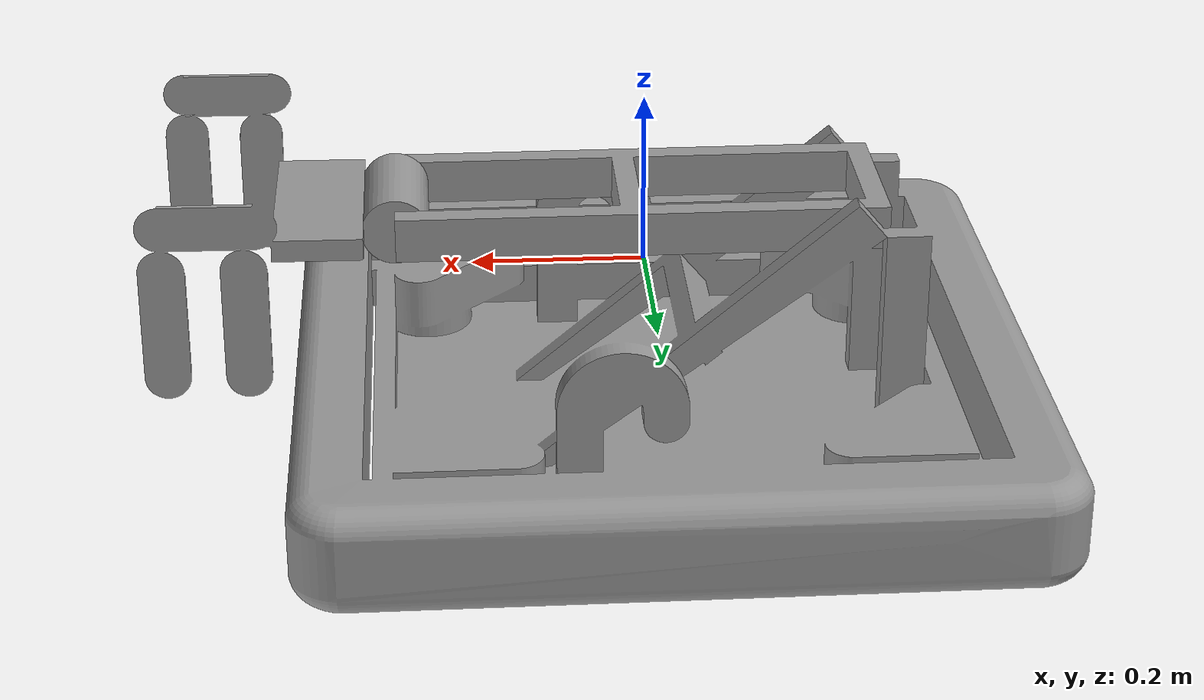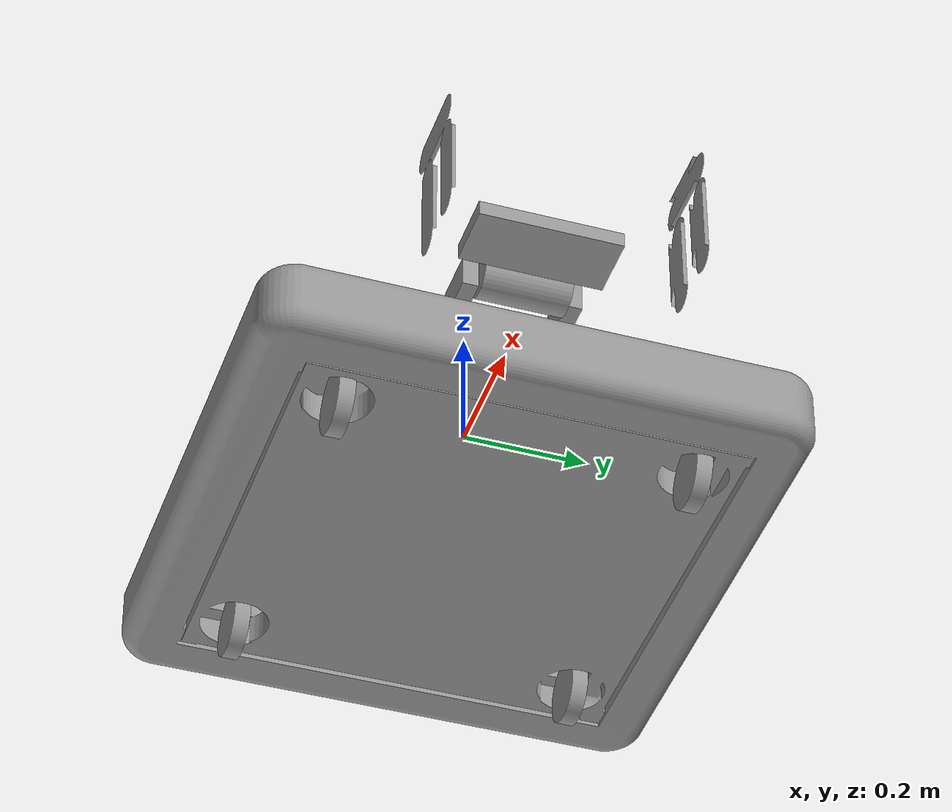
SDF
<?xml version='1.0'?>
<sdf version='1.7'>
  <model name='GLIP'>
    <link name='chassis'>
      <inertial>
        <mass>18.5</mass>
        <inertia>
          <ixx>1.40426</ixx>
          <ixy>0</ixy>
          <ixz>0</ixz>
          <iyy>1.38645</iyy>
          <iyz>0</iyz>
          <izz>2.62443</izz>
        </inertia>
        <pose>0 0 0 0 -0 0</pose>
      </inertial>
      <pose>-0.027031 0 -0.146051 0 -0 0</pose>
      <gravity>1</gravity>
      <self_collide>0</self_collide>
      <kinematic>0</kinematic>
      <enable_wind>0</enable_wind>
      <sensor name='imu_sensor' type='imu'>
        <always_on>1</always_on>
        <update_rate>100</update_rate>
        <visualize>1</visualize>
        <topic>imu_sensor</topic>
        <pose>0 0 0 0 -0 0</pose>
        <plugin name='nt_imu_plugin' filename='libnt_imu_plugin.so'>
          <robot_name>GLIP</robot_name>
        </plugin>
        <imu/>
      </sensor>
      <visual name='visual'>
        <pose>0 0 0 0 -0 0</pose>
        <geometry>
          <mesh>
            <uri>/home/ajahueym/Documents/Gits/Overture-ROS/src/robot_simulation/models/GLIP/Chassis.dae</uri>
            <scale>1 1 1</scale>
          </mesh>
        </geometry>
        <material>
          <lighting>1</lighting>
          <script>
            <uri>file://media/materials/scripts/gazebo.material</uri>
            <name>Gazebo/Grey</name>
          </script>
          <shader type='pixel'>
            <normal_map>__default__</normal_map>
          </shader>
          <ambient>0.3 0.3 0.3 1</ambient>
          <diffuse>0.7 0.7 0.7 1</diffuse>
          <specular>0.01 0.01 0.01 1</specular>
          <emissive>0 0 0 1</emissive>
        </material>
        <transparency>0</transparency>
        <cast_shadows>1</cast_shadows>
      </visual>
      <collision name='collision'>
        <laser_retro>0</laser_retro>
        <max_contacts>10</max_contacts>
        <pose>0 0 0 0 -0 0</pose>
        <geometry>
          <mesh>
            <uri>/home/ajahueym/Documents/Gits/Overture-ROS/src/robot_simulation/models/GLIP/Chassis.dae</uri>
            <scale>1 1 1</scale>
          </mesh>
        </geometry>
        <surface>
          <friction>
            <ode>
              <mu>1</mu>
              <mu2>1</mu2>
              <fdir1>0 0 0</fdir1>
              <slip1>0</slip1>
              <slip2>0</slip2>
            </ode>
            <torsional>
              <coefficient>1</coefficient>
              <patch_radius>0</patch_radius>
              <surface_radius>0</surface_radius>
              <use_patch_radius>1</use_patch_radius>
              <ode>
                <slip>0</slip>
              </ode>
            </torsional>
          </friction>
          <bounce>
            <restitution_coefficient>0</restitution_coefficient>
            <threshold>1e+06</threshold>
          </bounce>
          <contact>
            <collide_without_contact>0</collide_without_contact>
            <collide_without_contact_bitmask>1</collide_without_contact_bitmask>
            <collide_bitmask>1</collide_bitmask>
            <ode>
              <soft_cfm>0</soft_cfm>
              <soft_erp>0.2</soft_erp>
              <kp>1e+13</kp>
              <kd>1</kd>
              <max_vel>0.01</max_vel>
              <min_depth>0</min_depth>
            </ode>
            <bullet>
              <split_impulse>1</split_impulse>
              <split_impulse_penetration_threshold>-0.01</split_impulse_penetration_threshold>
              <soft_cfm>0</soft_cfm>
              <soft_erp>0.2</soft_erp>
              <kp>1e+13</kp>
              <kd>1</kd>
            </bullet>
          </contact>
        </surface>
      </collision>
    </link>
    <link name='arm'>
      <inertial>
        <mass>3</mass>
        <inertia>
          <ixx>0.0825805</ixx>
          <ixy>0</ixy>
          <ixz>0</ixz>
          <iyy>0.0211734</iyy>
          <iyz>0.015493</iyz>
          <izz>0.0963264</izz>
          <izy>0.01549296</izy>
        </inertia>
        <pose>0 0 0 0 -0 0</pose>
      </inertial>
      <pose>-0.259545 0 0.073061 0 -0 0</pose>
      <gravity>1</gravity>
      <self_collide>0</self_collide>
      <kinematic>0</kinematic>
      <enable_wind>0</enable_wind>
      <visual name='visual'>
        <pose>0 0 0 0 -0 0</pose>
        <geometry>
          <mesh>
            <uri>/home/ajahueym/Documents/Gits/Overture-ROS/src/robot_simulation/models/GLIP/Arm.dae</uri>
            <scale>1 1 1</scale>
          </mesh>
        </geometry>
        <material>
          <lighting>1</lighting>
          <script>
            <uri>file://media/materials/scripts/gazebo.material</uri>
            <name>Gazebo/Grey</name>
          </script>
          <shader type='pixel'>
            <normal_map>__default__</normal_map>
          </shader>
          <ambient>0.3 0.3 0.3 1</ambient>
          <diffuse>0.7 0.7 0.7 1</diffuse>
          <specular>0.01 0.01 0.01 1</specular>
          <emissive>0 0 0 1</emissive>
        </material>
        <transparency>0</transparency>
        <cast_shadows>1</cast_shadows>
      </visual>
      <collision name='collision'>
        <laser_retro>0</laser_retro>
        <max_contacts>10</max_contacts>
        <pose>0 0 0 0 -0 0</pose>
        <geometry>
          <mesh>
            <uri>/home/ajahueym/Documents/Gits/Overture-ROS/src/robot_simulation/models/GLIP/Arm.dae</uri>
            <scale>1 1 1</scale>
          </mesh>
        </geometry>
        <surface>
          <friction>
            <ode>
              <mu>1</mu>
              <mu2>1</mu2>
              <fdir1>0 0 0</fdir1>
              <slip1>0</slip1>
              <slip2>0</slip2>
            </ode>
            <torsional>
              <coefficient>1</coefficient>
              <patch_radius>0</patch_radius>
              <surface_radius>0</surface_radius>
              <use_patch_radius>1</use_patch_radius>
              <ode>
                <slip>0</slip>
              </ode>
            </torsional>
          </friction>
          <bounce>
            <restitution_coefficient>0</restitution_coefficient>
            <threshold>1e+06</threshold>
          </bounce>
          <contact>
            <collide_without_contact>0</collide_without_contact>
            <collide_without_contact_bitmask>1</collide_without_contact_bitmask>
            <collide_bitmask>1</collide_bitmask>
            <ode>
              <soft_cfm>0</soft_cfm>
              <soft_erp>0.2</soft_erp>
              <kp>1e+13</kp>
              <kd>1</kd>
              <max_vel>0.01</max_vel>
              <min_depth>0</min_depth>
            </ode>
            <bullet>
              <split_impulse>1</split_impulse>
              <split_impulse_penetration_threshold>-0.01</split_impulse_penetration_threshold>
              <soft_cfm>0</soft_cfm>
              <soft_erp>0.2</soft_erp>
              <kp>1e+13</kp>
              <kd>1</kd>
            </bullet>
          </contact>
        </surface>
      </collision>
    </link>
    <link name='link_0'>
      <inertial>
        <mass>0.24</mass>
        <inertia>
          <ixx>0.00019778</ixx>
          <ixy>0</ixy>
          <ixz>0</ixz>
          <iyy>0.00019778</iyy>
          <iyz>0</iyz>
          <izz>0.00035039</izz>
        </inertia>
        <pose>0 0 0 0 -0 0</pose>
      </inertial>
      <pose>0.253002 -0.275679 -0.212763 0 -0 0</pose>
      <gravity>1</gravity>
      <self_collide>0</self_collide>
      <kinematic>0</kinematic>
      <enable_wind>0</enable_wind>
      <visual name='visual'>
        <pose>0 0 0 0 -0 0</pose>
        <geometry>
          <mesh>
            <uri>/home/ajahueym/Documents/Gits/Overture-ROS/src/robot_simulation/models/GLIP/Wheel.dae</uri>
            <scale>1 1 1</scale>
          </mesh>
        </geometry>
        <material>
          <lighting>1</lighting>
          <script>
            <uri>file://media/materials/scripts/gazebo.material</uri>
            <name>Gazebo/Grey</name>
          </script>
          <shader type='pixel'>
            <normal_map>__default__</normal_map>
          </shader>
          <ambient>0.3 0.3 0.3 1</ambient>
          <diffuse>0.7 0.7 0.7 1</diffuse>
          <specular>0.01 0.01 0.01 1</specular>
          <emissive>0 0 0 1</emissive>
        </material>
        <transparency>0</transparency>
        <cast_shadows>1</cast_shadows>
      </visual>
      <collision name='collision'>
        <laser_retro>0</laser_retro>
        <max_contacts>10</max_contacts>
        <pose>0 0 0 0 -0 0</pose>
        <geometry>
          <mesh>
            <uri>/home/ajahueym/Documents/Gits/Overture-ROS/src/robot_simulation/models/GLIP/Wheel.dae</uri>
            <scale>1 1 1</scale>
          </mesh>
        </geometry>
        <surface>
          <friction>
            <ode>
              <mu>1</mu>
              <mu2>1</mu2>
              <fdir1>0 0 0</fdir1>
              <slip1>0</slip1>
              <slip2>0</slip2>
            </ode>
            <torsional>
              <coefficient>1</coefficient>
              <patch_radius>0</patch_radius>
              <surface_radius>0</surface_radius>
              <use_patch_radius>1</use_patch_radius>
              <ode>
                <slip>0</slip>
              </ode>
            </torsional>
          </friction>
          <bounce>
            <restitution_coefficient>0</restitution_coefficient>
            <threshold>1e+06</threshold>
          </bounce>
          <contact>
            <collide_without_contact>0</collide_without_contact>
            <collide_without_contact_bitmask>1</collide_without_contact_bitmask>
            <collide_bitmask>1</collide_bitmask>
            <ode>
              <soft_cfm>0</soft_cfm>
              <soft_erp>0.2</soft_erp>
              <kp>1e+13</kp>
              <kd>1</kd>
              <max_vel>0.01</max_vel>
              <min_depth>0</min_depth>
            </ode>
            <bullet>
              <split_impulse>1</split_impulse>
              <split_impulse_penetration_threshold>-0.01</split_impulse_penetration_threshold>
              <soft_cfm>0</soft_cfm>
              <soft_erp>0.2</soft_erp>
              <kp>1e+13</kp>
              <kd>1</kd>
            </bullet>
          </contact>
        </surface>
      </collision>
    </link>
    <link name='link_0_clone'>
      <inertial>
        <mass>0.24</mass>
        <inertia>
          <ixx>0.00019778</ixx>
          <ixy>0</ixy>
          <ixz>0</ixz>
          <iyy>0.00019778</iyy>
          <iyz>0</iyz>
          <izz>0.00035039</izz>
        </inertia>
        <pose>0 0 0 0 -0 0</pose>
      </inertial>
      <pose>0.253002 0.275679 -0.212763 0 -0 0</pose>
      <gravity>1</gravity>
      <self_collide>0</self_collide>
      <kinematic>0</kinematic>
      <enable_wind>0</enable_wind>
      <visual name='visual'>
        <pose>0 0 0 0 -0 0</pose>
        <geometry>
          <mesh>
            <uri>/home/ajahueym/Documents/Gits/Overture-ROS/src/robot_simulation/models/GLIP/Wheel.dae</uri>
            <scale>1 1 1</scale>
          </mesh>
        </geometry>
        <material>
          <lighting>1</lighting>
          <script>
            <uri>file://media/materials/scripts/gazebo.material</uri>
            <name>Gazebo/Grey</name>
          </script>
          <shader type='pixel'>
            <normal_map>__default__</normal_map>
          </shader>
          <ambient>0.3 0.3 0.3 1</ambient>
          <diffuse>0.7 0.7 0.7 1</diffuse>
          <specular>0.01 0.01 0.01 1</specular>
          <emissive>0 0 0 1</emissive>
        </material>
        <transparency>0</transparency>
        <cast_shadows>1</cast_shadows>
      </visual>
      <collision name='collision'>
        <laser_retro>0</laser_retro>
        <max_contacts>10</max_contacts>
        <pose>0 0 0 0 -0 0</pose>
        <geometry>
          <mesh>
            <uri>/home/ajahueym/Documents/Gits/Overture-ROS/src/robot_simulation/models/GLIP/Wheel.dae</uri>
            <scale>1 1 1</scale>
          </mesh>
        </geometry>
        <surface>
          <friction>
            <ode>
              <mu>1</mu>
              <mu2>1</mu2>
              <fdir1>0 0 0</fdir1>
              <slip1>0</slip1>
              <slip2>0</slip2>
            </ode>
            <torsional>
              <coefficient>1</coefficient>
              <patch_radius>0</patch_radius>
              <surface_radius>0</surface_radius>
              <use_patch_radius>1</use_patch_radius>
              <ode>
                <slip>0</slip>
              </ode>
            </torsional>
          </friction>
          <bounce>
            <restitution_coefficient>0</restitution_coefficient>
            <threshold>1e+06</threshold>
          </bounce>
          <contact>
            <collide_without_contact>0</collide_without_contact>
            <collide_without_contact_bitmask>1</collide_without_contact_bitmask>
            <collide_bitmask>1</collide_bitmask>
            <ode>
              <soft_cfm>0</soft_cfm>
              <soft_erp>0.2</soft_erp>
              <kp>1e+13</kp>
              <kd>1</kd>
              <max_vel>0.01</max_vel>
              <min_depth>0</min_depth>
            </ode>
            <bullet>
              <split_impulse>1</split_impulse>
              <split_impulse_penetration_threshold>-0.01</split_impulse_penetration_threshold>
              <soft_cfm>0</soft_cfm>
              <soft_erp>0.2</soft_erp>
              <kp>1e+13</kp>
              <kd>1</kd>
            </bullet>
          </contact>
        </surface>
      </collision>
    </link>
    <link name='link_0_clone_0'>
      <inertial>
        <mass>0.24</mass>
        <inertia>
          <ixx>0.00019778</ixx>
          <ixy>0</ixy>
          <ixz>0</ixz>
          <iyy>0.00019778</iyy>
          <iyz>0</iyz>
          <izz>0.00035039</izz>
        </inertia>
        <pose>0 0 0 0 -0 0</pose>
      </inertial>
      <pose>-0.301559 -0.275679 -0.212763 0 -0 0</pose>
      <gravity>1</gravity>
      <self_collide>0</self_collide>
      <kinematic>0</kinematic>
      <enable_wind>0</enable_wind>
      <visual name='visual'>
        <pose>0 0 0 0 -0 0</pose>
        <geometry>
          <mesh>
            <uri>/home/ajahueym/Documents/Gits/Overture-ROS/src/robot_simulation/models/GLIP/Wheel.dae</uri>
            <scale>1 1 1</scale>
          </mesh>
        </geometry>
        <material>
          <lighting>1</lighting>
          <script>
            <uri>file://media/materials/scripts/gazebo.material</uri>
            <name>Gazebo/Grey</name>
          </script>
          <shader type='pixel'>
            <normal_map>__default__</normal_map>
          </shader>
          <ambient>0.3 0.3 0.3 1</ambient>
          <diffuse>0.7 0.7 0.7 1</diffuse>
          <specular>0.01 0.01 0.01 1</specular>
          <emissive>0 0 0 1</emissive>
        </material>
        <transparency>0</transparency>
        <cast_shadows>1</cast_shadows>
      </visual>
      <collision name='collision'>
        <laser_retro>0</laser_retro>
        <max_contacts>10</max_contacts>
        <pose>0 0 0 0 -0 0</pose>
        <geometry>
          <mesh>
            <uri>/home/ajahueym/Documents/Gits/Overture-ROS/src/robot_simulation/models/GLIP/Wheel.dae</uri>
            <scale>1 1 1</scale>
          </mesh>
        </geometry>
        <surface>
          <friction>
            <ode>
              <mu>1</mu>
              <mu2>1</mu2>
              <fdir1>0 0 0</fdir1>
              <slip1>0</slip1>
              <slip2>0</slip2>
            </ode>
            <torsional>
              <coefficient>1</coefficient>
              <patch_radius>0</patch_radius>
              <surface_radius>0</surface_radius>
              <use_patch_radius>1</use_patch_radius>
              <ode>
                <slip>0</slip>
              </ode>
            </torsional>
          </friction>
          <bounce>
            <restitution_coefficient>0</restitution_coefficient>
            <threshold>1e+06</threshold>
          </bounce>
          <contact>
            <collide_without_contact>0</collide_without_contact>
            <collide_without_contact_bitmask>1</collide_without_contact_bitmask>
            <collide_bitmask>1</collide_bitmask>
            <ode>
              <soft_cfm>0</soft_cfm>
              <soft_erp>0.2</soft_erp>
              <kp>1e+13</kp>
              <kd>1</kd>
              <max_vel>0.01</max_vel>
              <min_depth>0</min_depth>
            </ode>
            <bullet>
              <split_impulse>1</split_impulse>
              <split_impulse_penetration_threshold>-0.01</split_impulse_penetration_threshold>
              <soft_cfm>0</soft_cfm>
              <soft_erp>0.2</soft_erp>
              <kp>1e+13</kp>
              <kd>1</kd>
            </bullet>
          </contact>
        </surface>
      </collision>
    </link>
    <link name='link_0_clone_0_clone'>
      <inertial>
        <mass>0.24</mass>
        <inertia>
          <ixx>0.00019778</ixx>
          <ixy>0</ixy>
          <ixz>0</ixz>
          <iyy>0.00019778</iyy>
          <iyz>0</iyz>
          <izz>0.00035039</izz>
        </inertia>
        <pose>0 0 0 0 -0 0</pose>
      </inertial>
      <pose>-0.301559 0.275679 -0.212763 0 -0 0</pose>
      <gravity>1</gravity>
      <self_collide>0</self_collide>
      <kinematic>0</kinematic>
      <enable_wind>0</enable_wind>
      <visual name='visual'>
        <pose>0 0 0 0 -0 0</pose>
        <geometry>
          <mesh>
            <uri>/home/ajahueym/Documents/Gits/Overture-ROS/src/robot_simulation/models/GLIP/Wheel.dae</uri>
            <scale>1 1 1</scale>
          </mesh>
        </geometry>
        <material>
          <lighting>1</lighting>
          <script>
            <uri>file://media/materials/scripts/gazebo.material</uri>
            <name>Gazebo/Grey</name>
          </script>
          <shader type='pixel'>
            <normal_map>__default__</normal_map>
          </shader>
          <ambient>0.3 0.3 0.3 1</ambient>
          <diffuse>0.7 0.7 0.7 1</diffuse>
          <specular>0.01 0.01 0.01 1</specular>
          <emissive>0 0 0 1</emissive>
        </material>
        <transparency>0</transparency>
        <cast_shadows>1</cast_shadows>
      </visual>
      <collision name='collision'>
        <laser_retro>0</laser_retro>
        <max_contacts>10</max_contacts>
        <pose>0 0 0 0 -0 0</pose>
        <geometry>
          <mesh>
            <uri>/home/ajahueym/Documents/Gits/Overture-ROS/src/robot_simulation/models/GLIP/Wheel.dae</uri>
            <scale>1 1 1</scale>
          </mesh>
        </geometry>
        <surface>
          <friction>
            <ode>
              <mu>1</mu>
              <mu2>1</mu2>
              <fdir1>0 0 0</fdir1>
              <slip1>0</slip1>
              <slip2>0</slip2>
            </ode>
            <torsional>
              <coefficient>1</coefficient>
              <patch_radius>0</patch_radius>
              <surface_radius>0</surface_radius>
              <use_patch_radius>1</use_patch_radius>
              <ode>
                <slip>0</slip>
              </ode>
            </torsional>
          </friction>
          <bounce>
            <restitution_coefficient>0</restitution_coefficient>
            <threshold>1e+06</threshold>
          </bounce>
          <contact>
            <collide_without_contact>0</collide_without_contact>
            <collide_without_contact_bitmask>1</collide_without_contact_bitmask>
            <collide_bitmask>1</collide_bitmask>
            <ode>
              <soft_cfm>0</soft_cfm>
              <soft_erp>0.2</soft_erp>
              <kp>1e+13</kp>
              <kd>1</kd>
              <max_vel>0.01</max_vel>
              <min_depth>0</min_depth>
            </ode>
            <bullet>
              <split_impulse>1</split_impulse>
              <split_impulse_penetration_threshold>-0.01</split_impulse_penetration_threshold>
              <soft_cfm>0</soft_cfm>
              <soft_erp>0.2</soft_erp>
              <kp>1e+13</kp>
              <kd>1</kd>
            </bullet>
          </contact>
        </surface>
      </collision>
    </link>
    <link name='shooter_intake'>
      <inertial>
        <mass>5</mass>
        <inertia>
          <ixx>0.056078</ixx>
          <ixy>0</ixy>
          <ixz>0</ixz>
          <iyy>0.0818291</iyy>
          <iyz>0</iyz>
          <izz>0.0898008</izz>
        </inertia>
        <pose>0 0 0 0 -0 0</pose>
      </inertial>
      <pose>0.286577 0 0.072989 0 1.56479 0</pose>
      <gravity>1</gravity>
      <self_collide>0</self_collide>
      <kinematic>0</kinematic>
      <enable_wind>0</enable_wind>
      <visual name='visual'>
        <pose>0 0 0 0 -0 0</pose>
        <geometry>
          <mesh>
            <uri>/home/ajahueym/Documents/Gits/Overture-ROS/src/robot_simulation/models/GLIP/ShooterIntake.dae</uri>
            <scale>1 1 1</scale>
          </mesh>
        </geometry>
        <material>
          <lighting>1</lighting>
          <script>
            <uri>file://media/materials/scripts/gazebo.material</uri>
            <name>Gazebo/Grey</name>
          </script>
          <shader type='pixel'>
            <normal_map>__default__</normal_map>
          </shader>
          <ambient>0.3 0.3 0.3 1</ambient>
          <diffuse>0.7 0.7 0.7 1</diffuse>
          <specular>0.01 0.01 0.01 1</specular>
          <emissive>0 0 0 1</emissive>
        </material>
        <transparency>0</transparency>
        <cast_shadows>1</cast_shadows>
      </visual>
      <collision name='collision'>
        <laser_retro>0</laser_retro>
        <max_contacts>10</max_contacts>
        <pose>0 0 0 0 -0 0</pose>
        <geometry>
          <mesh>
            <uri>/home/ajahueym/Documents/Gits/Overture-ROS/src/robot_simulation/models/GLIP/ShooterIntake.dae</uri>
            <scale>1 1 1</scale>
          </mesh>
        </geometry>
        <surface>
          <friction>
            <ode>
              <mu>1</mu>
              <mu2>1</mu2>
              <fdir1>0 0 0</fdir1>
              <slip1>0</slip1>
              <slip2>0</slip2>
            </ode>
            <torsional>
              <coefficient>1</coefficient>
              <patch_radius>0</patch_radius>
              <surface_radius>0</surface_radius>
              <use_patch_radius>1</use_patch_radius>
              <ode>
                <slip>0</slip>
              </ode>
            </torsional>
          </friction>
          <bounce>
            <restitution_coefficient>0</restitution_coefficient>
            <threshold>1e+06</threshold>
          </bounce>
          <contact>
            <collide_without_contact>0</collide_without_contact>
            <collide_without_contact_bitmask>1</collide_without_contact_bitmask>
            <collide_bitmask>1</collide_bitmask>
            <ode>
              <soft_cfm>0</soft_cfm>
              <soft_erp>0.2</soft_erp>
              <kp>1e+13</kp>
              <kd>1</kd>
              <max_vel>0.01</max_vel>
              <min_depth>0</min_depth>
            </ode>
            <bullet>
              <split_impulse>1</split_impulse>
              <split_impulse_penetration_threshold>-0.01</split_impulse_penetration_threshold>
              <soft_cfm>0</soft_cfm>
              <soft_erp>0.2</soft_erp>
              <kp>1e+13</kp>
              <kd>1</kd>
            </bullet>
          </contact>
        </surface>
      </collision>
    </link>
    <joint name='arm_to_shooter_intake_joint' type='revolute'>
      <parent>arm</parent>
      <child>shooter_intake</child>
      <pose>0 0 0 0 -0 0</pose>
      <axis>
        <xyz>0 1 0</xyz>
        <limit>
          <lower>-1.5708</lower>
          <upper>1.5708</upper>
          <effort>-1</effort>
          <velocity>-1</velocity>
        </limit>
        <dynamics>
          <spring_reference>0</spring_reference>
          <spring_stiffness>0</spring_stiffness>
          <damping>0</damping>
          <friction>0.5</friction>
        </dynamics>
      </axis>
      <physics>
        <ode>
          <limit>
            <cfm>0</cfm>
            <erp>0.2</erp>
          </limit>
          <suspension>
            <cfm>0</cfm>
            <erp>0.2</erp>
          </suspension>
        </ode>
      </physics>
    </joint>
    <joint name='chassis_JOINT_0' type='revolute'>
      <parent>chassis</parent>
      <child>link_0_clone_0_clone</child>
      <pose>0 0 0 0 -0 0</pose>
      <axis>
        <xyz>0 1 0</xyz>
        <limit>
          <lower>-1.79769e+308</lower>
          <upper>1.79769e+308</upper>
          <effort>-1</effort>
          <velocity>-1</velocity>
        </limit>
        <dynamics>
          <spring_reference>0</spring_reference>
          <spring_stiffness>0</spring_stiffness>
          <damping>0</damping>
          <friction>0</friction>
        </dynamics>
      </axis>
      <physics>
        <ode>
          <limit>
            <cfm>0</cfm>
            <erp>0.2</erp>
          </limit>
          <suspension>
            <cfm>0</cfm>
            <erp>0.2</erp>
          </suspension>
        </ode>
      </physics>
    </joint>
    <joint name='chassis_JOINT_2' type='revolute'>
      <parent>chassis</parent>
      <child>link_0_clone</child>
      <pose>0 0 0 0 -0 0</pose>
      <axis>
        <xyz>0 1 0</xyz>
        <limit>
          <lower>-1.79769e+308</lower>
          <upper>1.79769e+308</upper>
          <effort>-1</effort>
          <velocity>-1</velocity>
        </limit>
        <dynamics>
          <spring_reference>0</spring_reference>
          <spring_stiffness>0</spring_stiffness>
          <damping>0</damping>
        </dynamics>
      </axis>
      <physics>
        <ode>
          <limit>
            <cfm>0</cfm>
            <erp>0.2</erp>
          </limit>
          <suspension>
            <cfm>0</cfm>
            <erp>0.2</erp>
          </suspension>
        </ode>
      </physics>
    </joint>
    <joint name='chassis_JOINT_3' type='revolute'>
      <parent>chassis</parent>
      <child>link_0</child>
      <pose>0 0 0 0 -0 0</pose>
      <axis>
        <xyz>0 1 0</xyz>
        <limit>
          <lower>-1.79769e+308</lower>
          <upper>1.79769e+308</upper>
          <effort>-1</effort>
          <velocity>-1</velocity>
        </limit>
        <dynamics>
          <spring_reference>0</spring_reference>
          <spring_stiffness>0</spring_stiffness>
          <damping>0</damping>
        </dynamics>
      </axis>
      <physics>
        <ode>
          <limit>
            <cfm>0</cfm>
            <erp>0.2</erp>
          </limit>
          <suspension>
            <cfm>0</cfm>
            <erp>0.2</erp>
          </suspension>
        </ode>
      </physics>
    </joint>
    <joint name='chassis_JOINT_4' type='revolute'>
      <parent>chassis</parent>
      <child>link_0_clone_0</child>
      <pose>0 0 0 0 -0 0</pose>
      <axis>
        <xyz>0 1 0</xyz>
        <limit>
          <lower>-1.79769e+308</lower>
          <upper>1.79769e+308</upper>
          <effort>-1</effort>
          <velocity>-1</velocity>
        </limit>
        <dynamics>
          <spring_reference>0</spring_reference>
          <spring_stiffness>0</spring_stiffness>
          <damping>0</damping>
        </dynamics>
      </axis>
      <physics>
        <ode>
          <limit>
            <cfm>0</cfm>
            <erp>0.2</erp>
          </limit>
          <suspension>
            <cfm>0</cfm>
            <erp>0.2</erp>
          </suspension>
        </ode>
      </physics>
    </joint>
    <joint name='chassis_to_arm_joint' type='revolute'>
      <parent>chassis</parent>
      <child>arm</child>
      <pose>0 0 0 0 -0 0</pose>
      <axis>
        <xyz>0 1 0</xyz>
        <limit>
          <lower>-1.5708</lower>
          <upper>0.25</upper>
          <effort>-1</effort>
          <velocity>-1</velocity>
        </limit>
        <dynamics>
          <spring_reference>0</spring_reference>
          <spring_stiffness>0</spring_stiffness>
          <damping>0</damping>
          <friction>1</friction>
        </dynamics>
      </axis>
      <physics>
        <ode>
          <limit>
            <cfm>0</cfm>
            <erp>0.2</erp>
          </limit>
          <suspension>
            <cfm>0</cfm>
            <erp>0.2</erp>
          </suspension>
        </ode>
      </physics>
    </joint>
    <static>0</static>
    <allow_auto_disable>1</allow_auto_disable>
    <plugin name='NTMotor_Arm' filename='libnt_motor_plugin.so'>
      <joint_name>chassis_to_arm_joint</joint_name>
      <joint_axis>0</joint_axis>
      <torque_axis>y</torque_axis>
      <motor_model>FalconFOC</motor_model>
      <motor_count>2</motor_count>
      <gear_ratio>150</gear_ratio>
    </plugin>
    <plugin name='NTMotor_Arm_ShooterIntake' filename='libnt_motor_plugin.so'>
      <joint_name>arm_to_shooter_intake_joint</joint_name>
      <joint_axis>0</joint_axis>
      <torque_axis>y</torque_axis>
      <motor_model>FalconFOC</motor_model>
      <motor_count>1</motor_count>
      <gear_ratio>80</gear_ratio>
    </plugin>
  </model>
</sdf>
